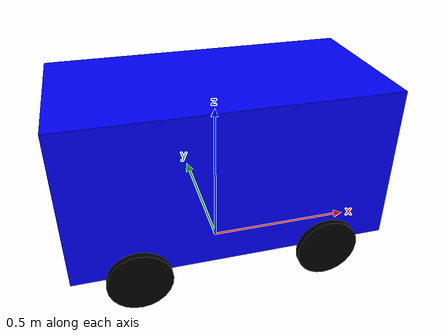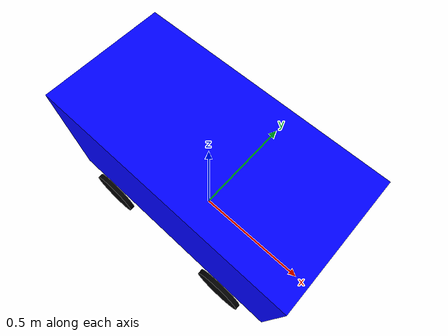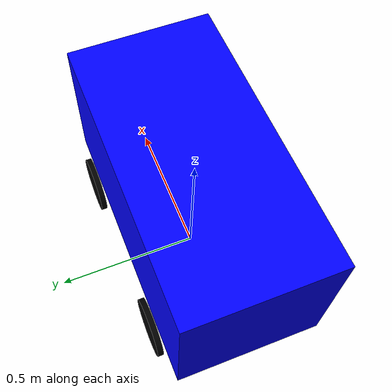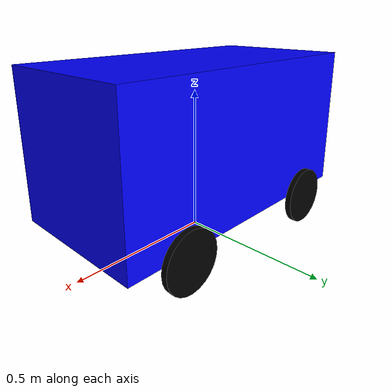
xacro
<?xml version="1.0"?>
<robot xmlns:xacro="http://www.ros.org/wiki/xacro" >

   <!-- Inertia Macro -->
   <xacro:include filename="inertial_macros.xacro" />
   <!-- Wheel Macro -->
   <xacro:include filename="wheels_macro.xacro" />

   <!-- Cart Properties -->
   <xacro:property name="base_length" value = "1"/>
   <xacro:property name="base_width" value = "0.5"/>
   <xacro:property name="base_height" value = "0.5"/>
   <xacro:property name="base_mass" value = "1"/>

   <!-- Wheels Properties -->
   <xacro:property name="wheel_radius" value="0.1"/>
   <xacro:property name="wheel_width" value="0.02"/>
   <xacro:property name="wheel_xoff" value="0.3"/>
   <xacro:property name="wheel_yoff" value="0.01"/>
   <xacro:property name="wheel_zoff" value="0.1"/>
   <xacro:property name="wheel_mass" value="0.1"/>

   <!-- Links & Joints -->
   <link name="base_link">
   </link>

   <joint name="cart_joint" type="fixed">
      <origin xyz="0.0 0.0 ${base_height/2 + wheel_radius + wheel_yoff}" rpy="0.0 0.0 0.0"/>
      <parent link="base_link"/>
      <child link="cart_link"/>
      <axis xyz="1.0 0.0 0.0"/>
      <limit lower="-500.0" upper="500.0" effort="1000000.0" velocity="1.0"/>
   </joint>

   <link name="cart_link">
      <visual>
         <origin xyz="0.0 0.0 0.0" rpy="0.0 0.0 0.0"/>
         <geometry>
               <box size="${base_length} ${base_width} ${base_height}"/>
         </geometry>
         <material name="Blue">
               <color rgba="0.0 0.0 1.0 1.0"/>
         </material>
      </visual>
      <collision>
         <origin xyz="0.0 0.0 0.0" rpy="0.0 0.0 0.0"/>
         <geometry>
               <box size="${base_length} ${base_width} ${base_height}"/>
         </geometry>
      </collision>
      <xacro:inertial_box mass="${base_mass}" x="${base_length}" y="${base_width}" z="${base_height}">
         <origin xyz="0.0 0 0.0" rpy="0 0 0"/>
      </xacro:inertial_box>
   </link>

   <xacro:create_wheel prefix="rl_wheel" x_reflect="-1" y_reflect="1" x="${wheel_xoff}" y="${wheel_yoff}" z="${wheel_zoff}" b="${base_width}" r="${wheel_radius}" w="${wheel_width}" m="${wheel_mass}" />
   <xacro:create_wheel prefix="rr_wheel" x_reflect="-1" y_reflect="-1" x="${wheel_xoff}" y="${wheel_yoff}" z="${wheel_zoff}" b="${base_width}" r="${wheel_radius}" w="${wheel_width}" m="${wheel_mass}" />
   <xacro:create_wheel prefix="fl_wheel" x_reflect="1" y_reflect="1" x="${wheel_xoff}" y="${wheel_yoff}" z="${wheel_zoff}" b="${base_width}" r="${wheel_radius}" w="${wheel_width}" m="${wheel_mass}" />
   <xacro:create_wheel prefix="fr_wheel" x_reflect="1" y_reflect="-1" x="${wheel_xoff}" y="${wheel_yoff}" z="${wheel_zoff}" b="${base_width}" r="${wheel_radius}" w="${wheel_width}" m="${wheel_mass}" />

   <gazebo reference="base_link"/>

   <gazebo reference="cart_link"/>

   <gazebo reference="rl_wheel_link">
      <mu1>1.0</mu1>
      <mu2>1.0</mu2>
   </gazebo>

   <gazebo reference="rr_wheel_link">
      <mu1>1.0</mu1>
      <mu2>1.0</mu2>
   </gazebo>

   <gazebo reference="fl_wheel_link">
      <mu1>1.0</mu1>
      <mu2>1.0</mu2>
   </gazebo>

   <gazebo reference="fr_wheel_link">
      <mu1>1.0</mu1>
      <mu2>1.0</mu2>
   </gazebo>

</robot>

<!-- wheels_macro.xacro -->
<robot xmlns:xacro="http://www.ros.org/wiki/xacro">
       <xacro:macro name="create_wheel" params="prefix x_reflect y_reflect x y z b r w m">
        <joint name="${prefix}_joint" type="continuous">
            <parent link="base_link"/>
            <child link="${prefix}_link"/>
            <origin xyz="${x_reflect*x} ${y_reflect*(b/2 + w/2 + y)} ${z}" rpy="${-y_reflect*pi/2} 0.0 0.0"/>
            <axis xyz="0 0 ${y_reflect}"/>
        </joint>
        <link name="${prefix}_link">
            <visual>
                <geometry>
                    <cylinder radius="${r}" length="${w}"/>
                </geometry>
                <material name = "Black">
                    <color rgba= "0 0 0 1"/>
                </material>
            </visual>
            <collision>
                <geometry>
                    <cylinder radius="${r}" length="${w}"/>
                </geometry>
            </collision>
            <xacro:inertial_cylinder mass="${m}"  radius="${r}" length="${w}">
                <origin xyz="0 0 0" rpy="0 0 0"/>
            </xacro:inertial_cylinder>
        </link>
    </xacro:macro>
</robot>
